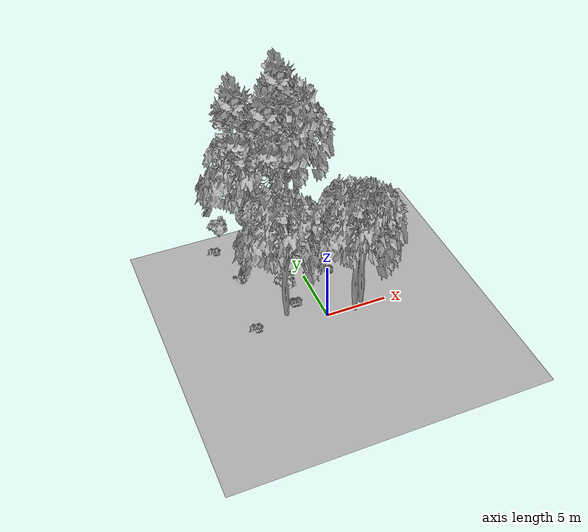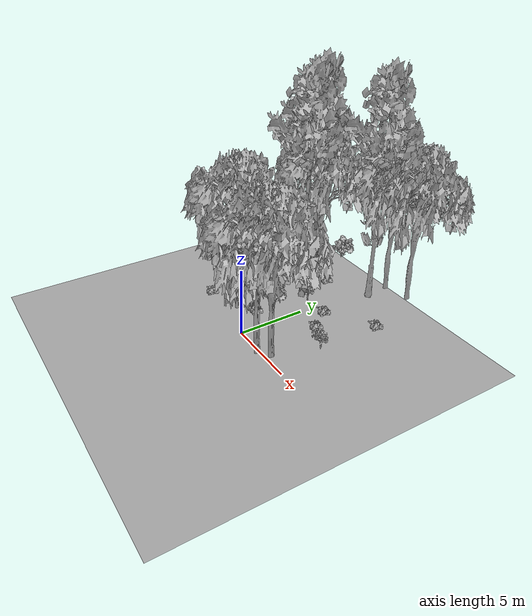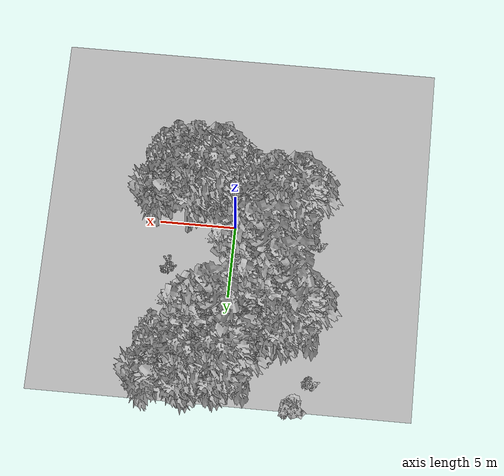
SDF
<sdf version="1.7">
 <world name="default">
  <model name="ground_plane">
   <static>1</static>
   <link name="link">
    <collision name="collision">
     <pose>-50 0 0 0 -0 0</pose>
     <geometry><plane><normal>0 0 1</normal><size>80 80</size></plane></geometry>
     <surface><contact><ode><min_depth>0.01</min_depth><max_vel>0</max_vel></ode></contact></surface>
    </collision>
    <visual name="grass">
     <cast_shadows>0</cast_shadows>
     <geometry>
      <mesh>
       <scale>0.46714285714285714 0.46714285714285714 0.1</scale>
       <uri>file://grass_plane/meshes/grass_plane.dae</uri>
      </mesh>
     </geometry>
    </visual>
   </link>
  </model>
  <model name="Tree 164">
   <static>1</static>
   <pose>-2.9567849350640643 1.3875306006627923 0 1.57079 -0 0</pose>
   <link name="link">
    <collision name="collision">
     <geometry><mesh><scale>3.5 5 3.5</scale><uri>model://tree_2/meshes/tree_2.obj</uri></mesh></geometry>
    </collision>
    <visual name="visual">
     <geometry><mesh><scale>3.5 5 3.5</scale><uri>model://tree_2/meshes/tree_2.obj</uri></mesh></geometry>
    </visual>
   </link>
  </model>
  <model name="Tree 220">
   <static>1</static>
   <pose>0.5458451327292835 12.44468440807438 0 1.57079 -0 0</pose>
   <link name="link">
    <collision name="collision">
     <geometry><mesh><scale>3.5 5 3.5</scale><uri>model://tree_2/meshes/tree_2.obj</uri></mesh></geometry>
    </collision>
    <visual name="visual">
     <geometry><mesh><scale>3.5 5 3.5</scale><uri>model://tree_2/meshes/tree_2.obj</uri></mesh></geometry>
    </visual>
   </link>
  </model>
  <model name="Tree 316">
   <static>1</static>
   <pose>3.0265114228792527 0.4109410870895829 0 1.57079 -0 0</pose>
   <link name="link">
    <collision name="collision">
     <geometry><mesh><scale>3.5 5 3.5</scale><uri>model://tree_2/meshes/tree_2.obj</uri></mesh></geometry>
    </collision>
    <visual name="visual">
     <geometry><mesh><scale>3.5 5 3.5</scale><uri>model://tree_2/meshes/tree_2.obj</uri></mesh></geometry>
    </visual>
   </link>
  </model>
  <model name="Tree 443">
   <static>1</static>
   <pose>0.845268831525182 10.600824899186435 0 1.57079 -0 0</pose>
   <link name="link">
    <collision name="collision">
     <geometry><mesh><scale>3.5 5 3.5</scale><uri>model://tree_9/meshes/tree_9.obj</uri></mesh></geometry>
    </collision>
    <visual name="visual">
     <geometry><mesh><scale>3.5 5 3.5</scale><uri>model://tree_9/meshes/tree_9.obj</uri></mesh></geometry>
    </visual>
   </link>
  </model>
  <model name="Tree 460">
   <static>1</static>
   <pose>-1.7662271199157544 6.344985815467403 0 1.57079 -0 0</pose>
   <link name="link">
    <collision name="collision">
     <geometry><mesh><scale>3.5 5 3.5</scale><uri>model://tree_9/meshes/tree_9.obj</uri></mesh></geometry>
    </collision>
    <visual name="visual">
     <geometry><mesh><scale>3.5 5 3.5</scale><uri>model://tree_9/meshes/tree_9.obj</uri></mesh></geometry>
    </visual>
   </link>
  </model>
  <model name="Tree 473">
   <static>1</static>
   <pose>-3.472170479886472 8.513572597972924 0 1.57079 -0 0</pose>
   <link name="link">
    <collision name="collision">
     <geometry><mesh><scale>3.5 5 3.5</scale><uri>model://tree_9/meshes/tree_9.obj</uri></mesh></geometry>
    </collision>
    <visual name="visual">
     <geometry><mesh><scale>3.5 5 3.5</scale><uri>model://tree_9/meshes/tree_9.obj</uri></mesh></geometry>
    </visual>
   </link>
  </model>
  <model name="Tree 544">
   <static>1</static>
   <pose>2.2093384118257333 -0.17719777719057817 0 1.57079 -0 0</pose>
   <link name="link">
    <collision name="collision">
     <geometry><mesh><scale>3.5 5 3.5</scale><uri>model://tree_2/meshes/tree_2.obj</uri></mesh></geometry>
    </collision>
    <visual name="visual">
     <geometry><mesh><scale>3.5 5 3.5</scale><uri>model://tree_2/meshes/tree_2.obj</uri></mesh></geometry>
    </visual>
   </link>
  </model>
  <model name="Tree 554">
   <static>1</static>
   <pose>-3.463026427657418 8.958849686814219 0 1.57079 -0 0</pose>
   <link name="link">
    <collision name="collision">
     <geometry><mesh><scale>3.5 5 3.5</scale><uri>model://tree_2/meshes/tree_2.obj</uri></mesh></geometry>
    </collision>
    <visual name="visual">
     <geometry><mesh><scale>3.5 5 3.5</scale><uri>model://tree_2/meshes/tree_2.obj</uri></mesh></geometry>
    </visual>
   </link>
  </model>
  <model name="Tree 555">
   <static>1</static>
   <pose>2.496007708644413 12.797644869570092 0 1.57079 -0 0</pose>
   <link name="link">
    <collision name="collision">
     <geometry><mesh><scale>3.5 5 3.5</scale><uri>model://tree_2/meshes/tree_2.obj</uri></mesh></geometry>
    </collision>
    <visual name="visual">
     <geometry><mesh><scale>3.5 5 3.5</scale><uri>model://tree_2/meshes/tree_2.obj</uri></mesh></geometry>
    </visual>
   </link>
  </model>
  <model name="Bush 34">
   <static>1</static>
   <pose>-2.0608108340671123 2.2833008267206907 0 1.57079 -0 0</pose>
   <link name="link">
    <collision name="collision">
     <geometry><mesh><scale>2 2 2</scale><uri>model://bush_2/meshes/bush_2.obj</uri></mesh></geometry>
     <surface><contact><collide_without_contact>false</collide_without_contact></contact></surface>
    </collision>
    <visual name="visual">
     <geometry><mesh><scale>2 2 2</scale><uri>model://bush_2/meshes/bush_2.obj</uri></mesh></geometry>
    </visual>
   </link>
  </model>
  <model name="Bush 37">
   <static>1</static>
   <pose>-2.805051800487611 9.228588940727093 0 1.57079 -0 0</pose>
   <link name="link">
    <collision name="collision">
     <geometry><mesh><scale>2 2 2</scale><uri>model://bush_2/meshes/bush_2.obj</uri></mesh></geometry>
     <surface><contact><collide_without_contact>false</collide_without_contact></contact></surface>
    </collision>
    <visual name="visual">
     <geometry><mesh><scale>2 2 2</scale><uri>model://bush_2/meshes/bush_2.obj</uri></mesh></geometry>
    </visual>
   </link>
  </model>
  <model name="Bush 55">
   <static>1</static>
   <pose>-4.872295341362367 6.122917644501669 0 1.57079 -0 0</pose>
   <link name="link">
    <collision name="collision">
     <geometry><mesh><scale>2 2 2</scale><uri>model://bush_4/meshes/bush_4.obj</uri></mesh></geometry>
     <surface><contact><collide_without_contact>false</collide_without_contact></contact></surface>
    </collision>
    <visual name="visual">
     <geometry><mesh><scale>2 2 2</scale><uri>model://bush_4/meshes/bush_4.obj</uri></mesh></geometry>
    </visual>
   </link>
  </model>
  <model name="Bush 82">
   <static>1</static>
   <pose>2.0551519302628094 4.808064252265105 0 1.57079 -0 0</pose>
   <link name="link">
    <collision name="collision">
     <geometry><mesh><scale>2 2 2</scale><uri>model://bush_2/meshes/bush_2.obj</uri></mesh></geometry>
     <surface><contact><collide_without_contact>false</collide_without_contact></contact></surface>
    </collision>
    <visual name="visual">
     <geometry><mesh><scale>2 2 2</scale><uri>model://bush_2/meshes/bush_2.obj</uri></mesh></geometry>
    </visual>
   </link>
  </model>
  <model name="Bush 88">
   <static>1</static>
   <pose>4.152956588907266 3.710677138949741 0 1.57079 -0 0</pose>
   <link name="link">
    <collision name="collision">
     <geometry><mesh><scale>2 2 2</scale><uri>model://bush_5/meshes/bush_5.obj</uri></mesh></geometry>
     <surface><contact><collide_without_contact>false</collide_without_contact></contact></surface>
    </collision>
    <visual name="visual">
     <geometry><mesh><scale>2 2 2</scale><uri>model://bush_5/meshes/bush_5.obj</uri></mesh></geometry>
    </visual>
   </link>
  </model>
  <model name="Bush 130">
   <static>1</static>
   <pose>-1.9373962782639467 3.857937568824056 0 1.57079 -0 0</pose>
   <link name="link">
    <collision name="collision">
     <geometry><mesh><scale>2 2 2</scale><uri>model://bush_1/meshes/bush_1.obj</uri></mesh></geometry>
     <surface><contact><collide_without_contact>false</collide_without_contact></contact></surface>
    </collision>
    <visual name="visual">
     <geometry><mesh><scale>2 2 2</scale><uri>model://bush_1/meshes/bush_1.obj</uri></mesh></geometry>
    </visual>
   </link>
  </model>
  <model name="Bush 183">
   <static>1</static>
   <pose>4.134804350572615 8.448402778694167 0 1.57079 -0 0</pose>
   <link name="link">
    <collision name="collision">
     <geometry><mesh><scale>2 2 2</scale><uri>model://bush_2/meshes/bush_2.obj</uri></mesh></geometry>
     <surface><contact><collide_without_contact>false</collide_without_contact></contact></surface>
    </collision>
    <visual name="visual">
     <geometry><mesh><scale>2 2 2</scale><uri>model://bush_2/meshes/bush_2.obj</uri></mesh></geometry>
    </visual>
   </link>
  </model>
  <model name="Bush 208">
   <static>1</static>
   <pose>-4.814459531234355 12.49551728652748 0 1.57079 -0 0</pose>
   <link name="link">
    <collision name="collision">
     <geometry><mesh><scale>2 2 2</scale><uri>model://bush_1/meshes/bush_1.obj</uri></mesh></geometry>
     <surface><contact><collide_without_contact>false</collide_without_contact></contact></surface>
    </collision>
    <visual name="visual">
     <geometry><mesh><scale>2 2 2</scale><uri>model://bush_1/meshes/bush_1.obj</uri></mesh></geometry>
    </visual>
   </link>
  </model>
  <model name="Bush 232">
   <static>1</static>
   <pose>-5.866194182287742 10.580541318051345 0 1.57079 -0 0</pose>
   <link name="link">
    <collision name="collision">
     <geometry><mesh><scale>2 2 2</scale><uri>model://bush_2/meshes/bush_2.obj</uri></mesh></geometry>
     <surface><contact><collide_without_contact>false</collide_without_contact></contact></surface>
    </collision>
    <visual name="visual">
     <geometry><mesh><scale>2 2 2</scale><uri>model://bush_2/meshes/bush_2.obj</uri></mesh></geometry>
    </visual>
   </link>
  </model>
  <model name="Bush 289">
   <static>1</static>
   <pose>-5.623446778110548 0.7609695889443842 0 1.57079 -0 0</pose>
   <link name="link">
    <collision name="collision">
     <geometry><mesh><scale>2 2 2</scale><uri>model://bush_2/meshes/bush_2.obj</uri></mesh></geometry>
     <surface><contact><collide_without_contact>false</collide_without_contact></contact></surface>
    </collision>
    <visual name="visual">
     <geometry><mesh><scale>2 2 2</scale><uri>model://bush_2/meshes/bush_2.obj</uri></mesh></geometry>
    </visual>
   </link>
  </model>
  <model name="Bush 324">
   <static>1</static>
   <pose>-1.7592136592602614 2.2727980192806285 0 1.57079 -0 0</pose>
   <link name="link">
    <collision name="collision">
     <geometry><mesh><scale>2 2 2</scale><uri>model://bush_2/meshes/bush_2.obj</uri></mesh></geometry>
     <surface><contact><collide_without_contact>false</collide_without_contact></contact></surface>
    </collision>
    <visual name="visual">
     <geometry><mesh><scale>2 2 2</scale><uri>model://bush_2/meshes/bush_2.obj</uri></mesh></geometry>
    </visual>
   </link>
  </model>
  <model name="Bush 330">
   <static>1</static>
   <pose>-0.9997474005807305 6.342003905393128 0 1.57079 -0 0</pose>
   <link name="link">
    <collision name="collision">
     <geometry><mesh><scale>2 2 2</scale><uri>model://bush_5/meshes/bush_5.obj</uri></mesh></geometry>
     <surface><contact><collide_without_contact>false</collide_without_contact></contact></surface>
    </collision>
    <visual name="visual">
     <geometry><mesh><scale>2 2 2</scale><uri>model://bush_5/meshes/bush_5.obj</uri></mesh></geometry>
    </visual>
   </link>
  </model>
  <model name="Bush 435">
   <static>1</static>
   <pose>-2.471884083764678 9.137962896084062 0 1.57079 -0 0</pose>
   <link name="link">
    <collision name="collision">
     <geometry><mesh><scale>2 2 2</scale><uri>model://bush_2/meshes/bush_2.obj</uri></mesh></geometry>
     <surface><contact><collide_without_contact>false</collide_without_contact></contact></surface>
    </collision>
    <visual name="visual">
     <geometry><mesh><scale>2 2 2</scale><uri>model://bush_2/meshes/bush_2.obj</uri></mesh></geometry>
    </visual>
   </link>
  </model>
  <model name="Bush 601">
   <static>1</static>
   <pose>0.8828639518161125 6.358961018290891 0 1.57079 -0 0</pose>
   <link name="link">
    <collision name="collision">
     <geometry><mesh><scale>2 2 2</scale><uri>model://bush_2/meshes/bush_2.obj</uri></mesh></geometry>
     <surface><contact><collide_without_contact>false</collide_without_contact></contact></surface>
    </collision>
    <visual name="visual">
     <geometry><mesh><scale>2 2 2</scale><uri>model://bush_2/meshes/bush_2.obj</uri></mesh></geometry>
    </visual>
   </link>
  </model>
 </world>
</sdf>
